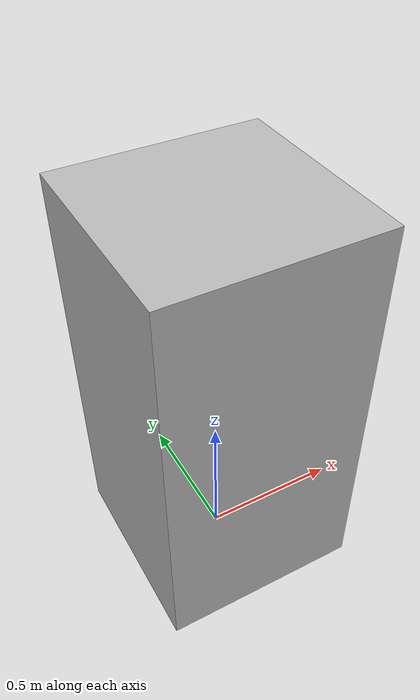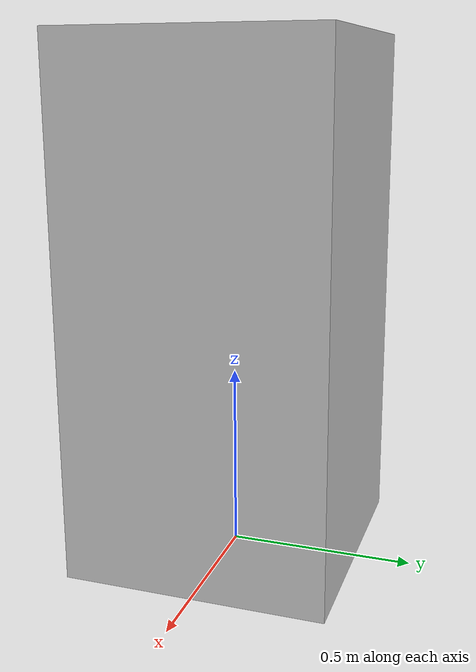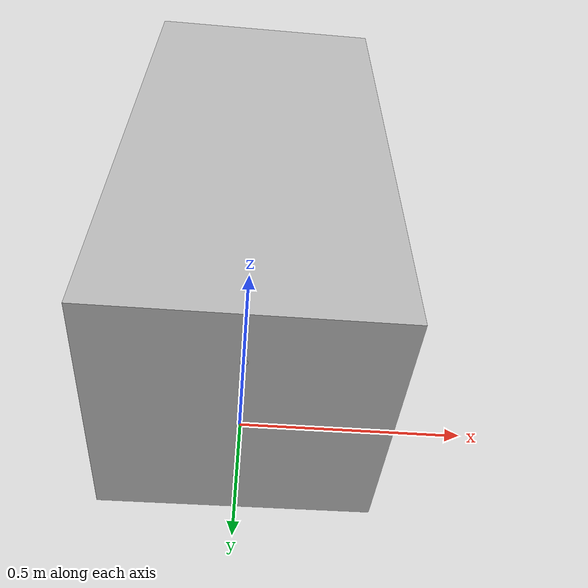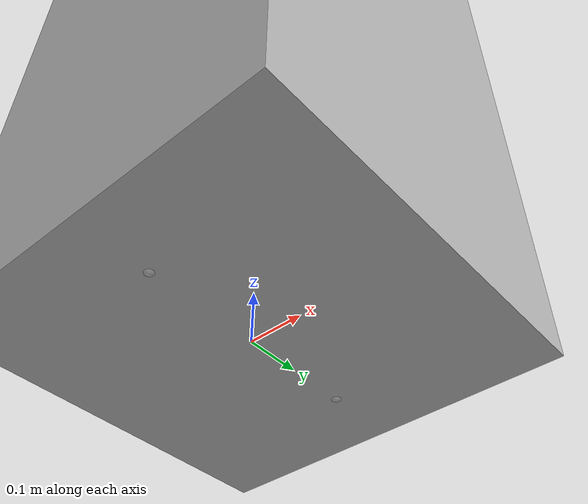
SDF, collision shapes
<?xml version='1.0'?>
<sdf version='1.7'>
  <model name='HospitalBot'>
    <link name='body'>
      <pose>0 0 0 0 -0 0</pose>
      <inertial>
        <pose>0 0 0.693 0 -0 0</pose>
        <mass>170</mass>
        <inertia>
          <ixx>34.6605</ixx>
          <iyy>32.8369</iyy>
          <izz>13.0691</izz>
          <ixy>0</ixy>
          <ixz>0</ixz>
          <iyz>0</iyz>
        </inertia>
      </inertial>
      <self_collide>0</self_collide>
      <enable_wind>0</enable_wind>
      <kinematic>0</kinematic>
      <visual name='visual'>
        <geometry>
          <mesh>
            <uri>https://fuel.ignitionrobotics.org/1.0/openrobotics/models/hospitalbot/2/files/meshes/HospitalBot.obj</uri>
          </mesh>
        </geometry>
        <material>
          <shader type='pixel'/>
        </material>
        <pose>0 0 0 0 -0 0</pose>
        <transparency>0</transparency>
        <cast_shadows>1</cast_shadows>
      </visual>
      <visual name='front_wheel_left'>
        <pose>0.17 -0.21 0.03 0 -0 0</pose>
        <geometry>
          <mesh>
            <uri>https://fuel.ignitionrobotics.org/1.0/openrobotics/models/hospitalbot/2/files/meshes/SmallWheel.obj</uri>
          </mesh>
        </geometry>
        <material>
          <shader type='pixel'/>
        </material>
        <transparency>0</transparency>
        <cast_shadows>1</cast_shadows>
      </visual>
      <visual name='back_wheel_left'>
        <pose>-0.24 -0.21 0.03 0 -0 0</pose>
        <geometry>
          <mesh>
            <uri>https://fuel.ignitionrobotics.org/1.0/openrobotics/models/hospitalbot/2/files/meshes/SmallWheel.obj</uri>
          </mesh>
        </geometry>
        <material>
          <shader type='pixel'/>
        </material>
        <transparency>0</transparency>
        <cast_shadows>1</cast_shadows>
      </visual>
      <visual name='front_wheel_right'>
        <pose>0.17 0.21 0.03 0 -0 0</pose>
        <geometry>
          <mesh>
            <uri>https://fuel.ignitionrobotics.org/1.0/openrobotics/models/hospitalbot/2/files/meshes/SmallWheel.obj</uri>
          </mesh>
        </geometry>
        <material>
          <shader type='pixel'/>
        </material>
        <transparency>0</transparency>
        <cast_shadows>1</cast_shadows>
      </visual>
      <visual name='back_wheel_right'>
        <pose>-0.24 0.21 0.03 0 -0 0</pose>
        <geometry>
          <mesh>
            <uri>https://fuel.ignitionrobotics.org/1.0/openrobotics/models/hospitalbot/2/files/meshes/SmallWheel.obj</uri>
          </mesh>
        </geometry>
        <material>
          <shader type='pixel'/>
        </material>
        <transparency>0</transparency>
        <cast_shadows>1</cast_shadows>
      </visual>
      <collision name='collision'>
        <laser_retro>0</laser_retro>
        <max_contacts>10</max_contacts>
        <pose>0 0 0.7 0 -0 0</pose>
        <geometry>
          <box>
            <size>0.7 0.7 1.4</size>
          </box>
        </geometry>
        <surface>
          <friction>
            <ode>
              <mu>0</mu>
              <mu2>0</mu2>
              <fdir1>0 0 0</fdir1>
              <slip1>0</slip1>
              <slip2>0</slip2>
            </ode>
            <torsional>
              <coefficient>0</coefficient>
              <patch_radius>0</patch_radius>
              <surface_radius>0</surface_radius>
              <use_patch_radius>1</use_patch_radius>
              <ode>
                <slip>0</slip>
              </ode>
            </torsional>
          </friction>
          <bounce>
            <restitution_coefficient>0</restitution_coefficient>
            <threshold>1e+06</threshold>
          </bounce>
          <contact>
            <collide_without_contact>0</collide_without_contact>
            <collide_without_contact_bitmask>1</collide_without_contact_bitmask>
            <collide_bitmask>1</collide_bitmask>
            <ode>
              <soft_cfm>0</soft_cfm>
              <soft_erp>0.2</soft_erp>
              <kp>1e+13</kp>
              <kd>1</kd>
              <max_vel>0.01</max_vel>
              <min_depth>0</min_depth>
            </ode>
            <bullet>
              <split_impulse>1</split_impulse>
              <split_impulse_penetration_threshold>-0.01</split_impulse_penetration_threshold>
              <soft_cfm>0</soft_cfm>
              <soft_erp>0.2</soft_erp>
              <kp>1e+13</kp>
              <kd>1</kd>
            </bullet>
          </contact>
        </surface>
      </collision>
    </link>
    <link name='suspension_tire_left'>
      <pose>0 0.21 0.06 0 -0 0</pose>
      <inertial>
        <mass>1</mass>
        <inertia>
          <ixx>1</ixx>
          <iyy>1</iyy>
          <izz>1</izz>
          <ixy>0</ixy>
          <ixz>0</ixz>
          <iyz>0</iyz>
        </inertia>
        <pose>0 0 0 0 -0 0</pose>
      </inertial>
      <self_collide>0</self_collide>
      <enable_wind>0</enable_wind>
      <kinematic>0</kinematic>
    </link>
    <link name='suspension_tire_right'>
      <pose>-0 -0.21 0.06 0 -0 0</pose>
      <inertial>
        <mass>1</mass>
        <inertia>
          <ixx>1</ixx>
          <iyy>1</iyy>
          <izz>1</izz>
          <ixy>0</ixy>
          <ixz>0</ixz>
          <iyz>0</iyz>
        </inertia>
        <pose>0 0 0 0 -0 0</pose>
      </inertial>
      <self_collide>0</self_collide>
      <enable_wind>0</enable_wind>
      <kinematic>0</kinematic>
    </link>
    <link name='tire_left'>
      <pose>0 0.21 0.06 0 -0 0</pose>
      <inertial>
        <pose>0 0 0 0 -0 0</pose>
        <mass>5</mass>
        <inertia>
          <ixx>0.757897</ixx>
          <iyy>1.30298</iyy>
          <izz>0.757897</izz>
          <ixy>0</ixy>
          <ixz>0</ixz>
          <iyz>0</iyz>
        </inertia>
      </inertial>
      <self_collide>0</self_collide>
      <enable_wind>0</enable_wind>
      <kinematic>0</kinematic>
      <visual name='fat_wheel_left'>
        <geometry>
          <mesh>
            <uri>https://fuel.ignitionrobotics.org/1.0/openrobotics/models/hospitalbot/2/files/meshes/FatWheel.obj</uri>
          </mesh>
        </geometry>
        <material>
          <shader type='pixel'/>
        </material>
        <pose>0 0 0 0 -0 0</pose>
        <transparency>0</transparency>
        <cast_shadows>1</cast_shadows>
      </visual>
      <collision name='tire_left'>
        <laser_retro>0</laser_retro>
        <max_contacts>10</max_contacts>
        <pose>0 0 0 0 -0 0</pose>
        <geometry>
          <sphere>
            <radius>0.06137</radius>
          </sphere>
        </geometry>
        <surface>
          <friction>
            <ode>
              <mu>1</mu>
              <mu2>1</mu2>
              <fdir1>0 0 0</fdir1>
              <slip1>0</slip1>
              <slip2>0</slip2>
            </ode>
            <torsional>
              <coefficient>1</coefficient>
              <patch_radius>0</patch_radius>
              <surface_radius>0</surface_radius>
              <use_patch_radius>1</use_patch_radius>
              <ode>
                <slip>0</slip>
              </ode>
            </torsional>
          </friction>
          <bounce>
            <restitution_coefficient>0</restitution_coefficient>
            <threshold>1e+06</threshold>
          </bounce>
          <contact>
            <collide_without_contact>0</collide_without_contact>
            <collide_without_contact_bitmask>1</collide_without_contact_bitmask>
            <collide_bitmask>1</collide_bitmask>
            <ode>
              <soft_cfm>0</soft_cfm>
              <soft_erp>0.2</soft_erp>
              <kp>1e+07</kp>
              <kd>1</kd>
              <max_vel>0.01</max_vel>
              <min_depth>0</min_depth>
            </ode>
            <bullet>
              <split_impulse>1</split_impulse>
              <split_impulse_penetration_threshold>-0.01</split_impulse_penetration_threshold>
              <soft_cfm>0</soft_cfm>
              <soft_erp>0.2</soft_erp>
              <kp>1e+07</kp>
              <kd>1</kd>
            </bullet>
          </contact>
        </surface>
      </collision>
    </link>
    <link name='tire_right'>
      <pose>-0 -0.21 0.06 0 -0 0</pose>
      <inertial>
        <pose>0 0 0 0 -0 0</pose>
        <mass>5</mass>
        <inertia>
          <ixx>0.757897</ixx>
          <iyy>1.30298</iyy>
          <izz>0.757897</izz>
          <ixy>0</ixy>
          <ixz>0</ixz>
          <iyz>0</iyz>
        </inertia>
      </inertial>
      <self_collide>0</self_collide>
      <enable_wind>0</enable_wind>
      <kinematic>0</kinematic>
      <visual name='fat_wheel_right'>
        <geometry>
          <mesh>
            <uri>https://fuel.ignitionrobotics.org/1.0/openrobotics/models/hospitalbot/2/files/meshes/FatWheel.obj</uri>
          </mesh>
        </geometry>
        <material>
          <shader type='pixel'/>
        </material>
        <pose>0 0 0 0 -0 0</pose>
        <transparency>0</transparency>
        <cast_shadows>1</cast_shadows>
      </visual>
      <collision name='tire_right'>
        <laser_retro>0</laser_retro>
        <max_contacts>10</max_contacts>
        <pose>0 0 0 0 -0 0</pose>
        <geometry>
          <sphere>
            <radius>0.06137</radius>
          </sphere>
        </geometry>
        <surface>
          <friction>
            <ode>
              <mu>1</mu>
              <mu2>1</mu2>
              <fdir1>0 0 0</fdir1>
              <slip1>0</slip1>
              <slip2>0</slip2>
            </ode>
            <torsional>
              <coefficient>1</coefficient>
              <patch_radius>0</patch_radius>
              <surface_radius>0</surface_radius>
              <use_patch_radius>1</use_patch_radius>
              <ode>
                <slip>0</slip>
              </ode>
            </torsional>
          </friction>
          <bounce>
            <restitution_coefficient>0</restitution_coefficient>
            <threshold>1e+06</threshold>
          </bounce>
          <contact>
            <collide_without_contact>0</collide_without_contact>
            <collide_without_contact_bitmask>1</collide_without_contact_bitmask>
            <collide_bitmask>1</collide_bitmask>
            <ode>
              <soft_cfm>0</soft_cfm>
              <soft_erp>0.2</soft_erp>
              <kp>1e+07</kp>
              <kd>1</kd>
              <max_vel>0.01</max_vel>
              <min_depth>0</min_depth>
            </ode>
            <bullet>
              <split_impulse>1</split_impulse>
              <split_impulse_penetration_threshold>-0.01</split_impulse_penetration_threshold>
              <soft_cfm>0</soft_cfm>
              <soft_erp>0.2</soft_erp>
              <kp>1e+07</kp>
              <kd>1</kd>
            </bullet>
          </contact>
        </surface>
      </collision>
    </link>
    <joint name='joint_suspension_tire_left' type='prismatic'>
      <parent>body</parent>
      <child>suspension_tire_left</child>
      <pose>0 0 0 0 -0 0</pose>
      <axis>
        <xyz>0 0 1</xyz>
        <limit>
          <lower>-1e+16</lower>
          <upper>1e+16</upper>
          <effort>-1</effort>
          <velocity>-1</velocity>
        </limit>
        <dynamics>
          <spring_reference>0</spring_reference>
          <spring_stiffness>0</spring_stiffness>
          <damping>500</damping>
          <friction>0</friction>
        </dynamics>
      </axis>
      <physics>
        <ode>
          <limit>
            <cfm>0</cfm>
            <erp>0.2</erp>
          </limit>
          <suspension>
            <cfm>0</cfm>
            <erp>0.2</erp>
          </suspension>
        </ode>
      </physics>
    </joint>
    <joint name='joint_suspension_tire_right' type='prismatic'>
      <parent>body</parent>
      <child>suspension_tire_right</child>
      <pose>0 0 0 0 -0 0</pose>
      <axis>
        <xyz>0 0 1</xyz>
        <limit>
          <lower>-1e+16</lower>
          <upper>1e+16</upper>
          <effort>-1</effort>
          <velocity>-1</velocity>
        </limit>
        <dynamics>
          <spring_reference>0</spring_reference>
          <spring_stiffness>0</spring_stiffness>
          <damping>500</damping>
          <friction>0</friction>
        </dynamics>
      </axis>
      <physics>
        <ode>
          <limit>
            <cfm>0</cfm>
            <erp>0.2</erp>
          </limit>
          <suspension>
            <cfm>0</cfm>
            <erp>0.2</erp>
          </suspension>
        </ode>
      </physics>
    </joint>
    <joint name='joint_tire_left' type='revolute'>
      <parent>suspension_tire_left</parent>
      <child>tire_left</child>
      <pose>0 0 0 0 -0 0</pose>
      <axis>
        <xyz>0 1 0</xyz>
        <limit>
          <lower>-1e+16</lower>
          <upper>1e+16</upper>
          <effort>-1</effort>
          <velocity>-1</velocity>
        </limit>
        <dynamics>
          <spring_reference>0</spring_reference>
          <spring_stiffness>0</spring_stiffness>
          <damping>0</damping>
          <friction>0</friction>
        </dynamics>
      </axis>
      <physics>
        <ode>
          <limit>
            <cfm>0</cfm>
            <erp>0.2</erp>
          </limit>
          <suspension>
            <cfm>0</cfm>
            <erp>0.2</erp>
          </suspension>
        </ode>
      </physics>
    </joint>
    <joint name='joint_tire_right' type='revolute'>
      <parent>suspension_tire_right</parent>
      <child>tire_right</child>
      <pose>0 0 0 0 -0 0</pose>
      <axis>
        <xyz>0 1 0</xyz>
        <limit>
          <lower>-1e+16</lower>
          <upper>1e+16</upper>
          <effort>-1</effort>
          <velocity>-1</velocity>
        </limit>
        <dynamics>
          <spring_reference>0</spring_reference>
          <spring_stiffness>0</spring_stiffness>
          <damping>0</damping>
          <friction>0</friction>
        </dynamics>
      </axis>
      <physics>
        <ode>
          <limit>
            <cfm>0</cfm>
            <erp>0.2</erp>
          </limit>
          <suspension>
            <cfm>0</cfm>
            <erp>0.2</erp>
          </suspension>
        </ode>
      </physics>
    </joint>
    <static>1</static>
    <allow_auto_disable>1</allow_auto_disable>
  </model>
</sdf>
